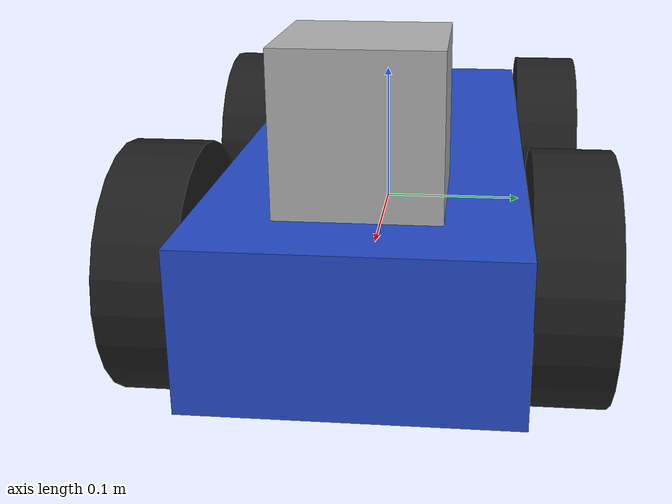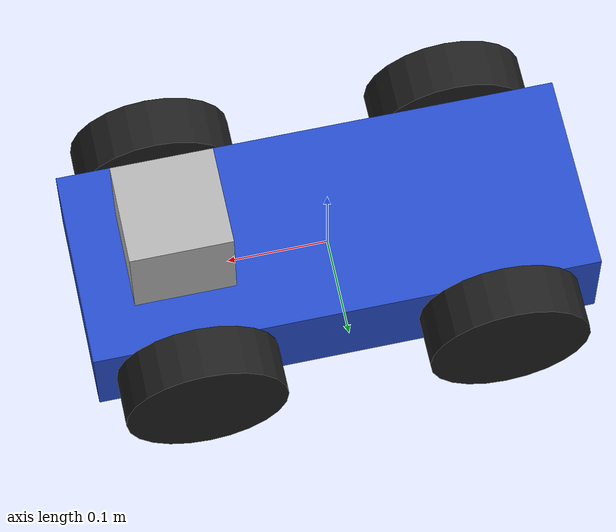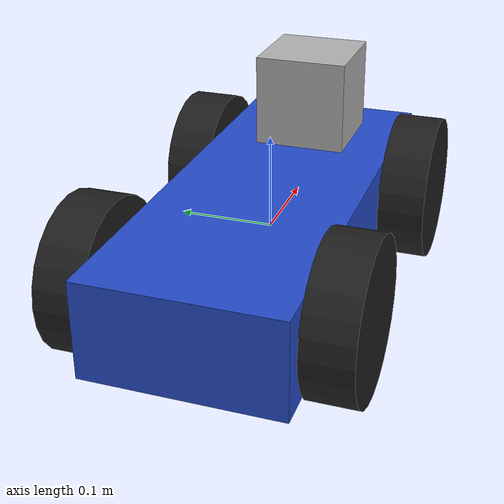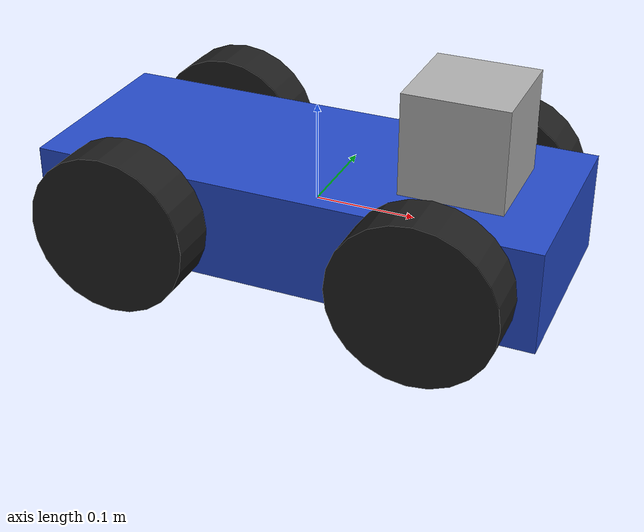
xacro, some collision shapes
<?xml version='1.0'?>

<robot name="my_robot" xmlns:xacro="http://www.ros.org/wiki/xacro">

	<xacro:include filename="$(find my_robot)/urdf/my_robot.gazebo" />
  <link name="robot_footprint"></link>

  <joint name="robot_footprint_joint" type="fixed">
    <origin xyz="0 0 0" rpy="0 0 0" />
    <parent link="robot_footprint"/>
    <child link="chassis" />
  </joint>

  <link name='chassis'>
    <pose>0 0 0.1 0 0 0</pose>
    <inertial>
      <mass value="15.0"/>
      <origin xyz="0.0 0 0" rpy=" 0 0 0"/>
      <inertia
          ixx="0.1" ixy="0" ixz="0"
          iyy="0.1" iyz="0"
          izz="0.1"
      />
    </inertial>
    <collision name='collision'>
      <origin xyz="0 0 0" rpy=" 0 0 0"/>
      <geometry>
        <box size=".5 .2 .1"/>
      </geometry>
    </collision>
    <visual name='chassis_visual'>
      <origin xyz="0 0 0" rpy=" 0 0 0"/>
      <geometry>
        <box size=".5 .2 .1"/>
      </geometry>
    </visual>
  </link>

  <link name="front_left_wheel">
    <inertial>
      <origin xyz="0 0 0" rpy="0 1.5707 1.5707"/>
      <mass value="5"/>
      <inertia
              ixx="0.1" ixy="0" ixz="0"
              iyy="0.1" iyz="0" izz="0.1"
      />
    </inertial>
    <collision>
      <origin xyz="0 0 0" rpy="0 1.5707 1.5707"/>
      <geometry>
        <cylinder radius="0.08" length="0.05"/>
      </geometry>
    </collision>
    <visual>
      <origin xyz="0 0 0" rpy="0 1.5707 1.5707"/>
      <geometry>
        <cylinder radius="0.08" length="0.05"/>
      </geometry>
    </visual>
  </link>

  <link name="back_left_wheel">
    <inertial>
      <origin xyz="0 0 0" rpy="0 1.5707 1.5707"/>
      <mass value="5"/>
      <inertia
              ixx="0.1" ixy="0" ixz="0"
              iyy="0.1" iyz="0" izz="0.1"
      />
    </inertial>
    <collision>
      <origin xyz="0 0 0" rpy="0 1.5707 1.5707"/>
      <geometry>
        <cylinder radius="0.08" length="0.05"/>
      </geometry>
    </collision>
    <visual>
      <origin xyz="0 0 0" rpy="0 1.5707 1.5707"/>
      <geometry>
        <cylinder radius="0.08" length="0.05"/>
      </geometry>
    </visual>
  </link>

  <link name="back_right_wheel">
    <inertial>
      <origin xyz="0 0 0" rpy="0 1.5707 1.5707"/>
      <mass value="5"/>
      <inertia
              ixx="0.1" ixy="0" ixz="0"
              iyy="0.1" iyz="0" izz="0.1"
      />
    </inertial>
    <collision>
      <origin xyz="0 0 0" rpy="0 1.5707 1.5707"/>
      <geometry>
        <cylinder radius="0.08" length="0.05"/>
      </geometry>
    </collision>
    <visual>
      <origin xyz="0 0 0" rpy="0 1.5707 1.5707"/>
      <geometry>
        <cylinder radius="0.08" length="0.05"/>
      </geometry>
    </visual>
  </link>

  <link name="front_right_wheel">
    <inertial>
      <origin xyz="0 0 0" rpy="0 1.5707 1.5707"/>
      <mass value="5"/>
      <inertia
              ixx="0.1" ixy="0" ixz="0"
              iyy="0.1" iyz="0" izz="0.1"
      />
    </inertial>
    <collision>
      <origin xyz="0 0 0" rpy="0 1.5707 1.5707"/>
      <geometry>
        <cylinder radius="0.08" length="0.05"/>
      </geometry>
    </collision>
    <visual>
      <origin xyz="0 0 0" rpy="0 1.5707 1.5707"/>
      <geometry>
        <cylinder radius="0.08" length="0.05"/>
      </geometry>
    </visual>
  </link>

  <joint name="front_left_wheel_hinge" type="continuous">
    <origin xyz="0.15 0.125 0" rpy="0 0 0"/>
    <child link="front_left_wheel"/>
    <parent link="chassis"/>
    <axis xyz="0 1 0" rpy="0 0 0"/>
    <limit effort="10000" velocity="1000"/>
    <dynamics damping="1.0" friction="1.0"/>
  </joint>

  <joint name="back_left_wheel_hinge" type="continuous">
    <origin xyz="-0.15 0.125 0" rpy="0 0 0"/>
    <child link="back_left_wheel"/>
    <parent link="chassis"/>
    <axis xyz="0 1 0" rpy="0 0 0"/>
    <limit effort="10000" velocity="1000"/>
    <dynamics damping="1.0" friction="1.0"/>
  </joint>

  <joint name="front_right_wheel_hinge" type="continuous">
    <origin xyz="0.15 -0.125 0" rpy="0 0 0"/>
    <child link="front_right_wheel"/>
    <parent link="chassis"/>
    <axis xyz="0 1 0" rpy="0 0 0"/>
    <limit effort="10000" velocity="1000"/>
    <dynamics damping="1.0" friction="1.0"/>
  </joint>

  <joint name="back_right_wheel_hinge" type="continuous">
    <origin xyz="-0.15 -0.125 0" rpy="0 0 0"/>
    <child link="back_right_wheel"/>
    <parent link="chassis"/>
    <axis xyz="0 1 0" rpy="0 0 0"/>
    <limit effort="10000" velocity="1000"/>
    <dynamics damping="1.0" friction="1.0"/>
  </joint>

  <link name="camera">
    <origin xyz="0 0 0" rpy="0 0 0" />
    <inertial>
      <mass value="0.1"/>
      <inertia
              ixx="1e-6" ixy="0" ixz="0"
              iyy="1e-6" iyz="0" izz="1e-6"
      />
    </inertial>
    <collision>
      <geometry>
        <box size="0.05 0.05 0.05"/>
      </geometry>
    </collision>
    <visual>
      <geometry>
        <box size="0.05 0.05 0.05"/>
      </geometry>
    </visual>
  </link>

  <joint name="camera_joint" type="fixed">
    <axis xyz="0 1 0"/>
    <origin xyz="0.2 0 0" rpy="0 0 0" />
    <parent link="chassis"/>
    <child link="camera" />
  </joint>
  <link name="hokuyo">
    <origin xyz="0 0 0" rpy="0 0 0" />

    <inertial>
      <mass value="1e-5"/>
      <inertia
              ixx="1e-6" ixy="0" ixz="0"
              iyy="1e-6" iyz="0" izz="1e-6"
      />
    </inertial>
    <collision>
      <geometry>
        <box size=".1 .1 .1"/>
      </geometry>
    </collision>
    <visual>
      <geometry>
        <mesh filename="package://my_robot/meshes/hokuyo.dae"/>
      </geometry>
    </visual>
  </link>

  <joint name="hokuyo_joint" type="fixed">
    <axis xyz="0 1 0"/>
    <origin xyz="0.15 0 0.1" rpy="0 0 0" />
    <parent link="chassis"/>
    <child link="hokuyo" />
  </joint>

  <gazebo reference="chassis">
    <material>Gazebo/Blue</material>
  </gazebo>

  <gazebo reference="front_left_wheel">
    <material>Gazebo/Black</material>
  </gazebo>

  <gazebo reference="front_right_wheel">
    <material>Gazebo/Black</material>
  </gazebo>

  <gazebo reference="back_left_wheel">
    <material>Gazebo/Black</material>
  </gazebo>

  <gazebo reference="back_right_wheel">
    <material>Gazebo/Black</material>
  </gazebo>

</robot>
